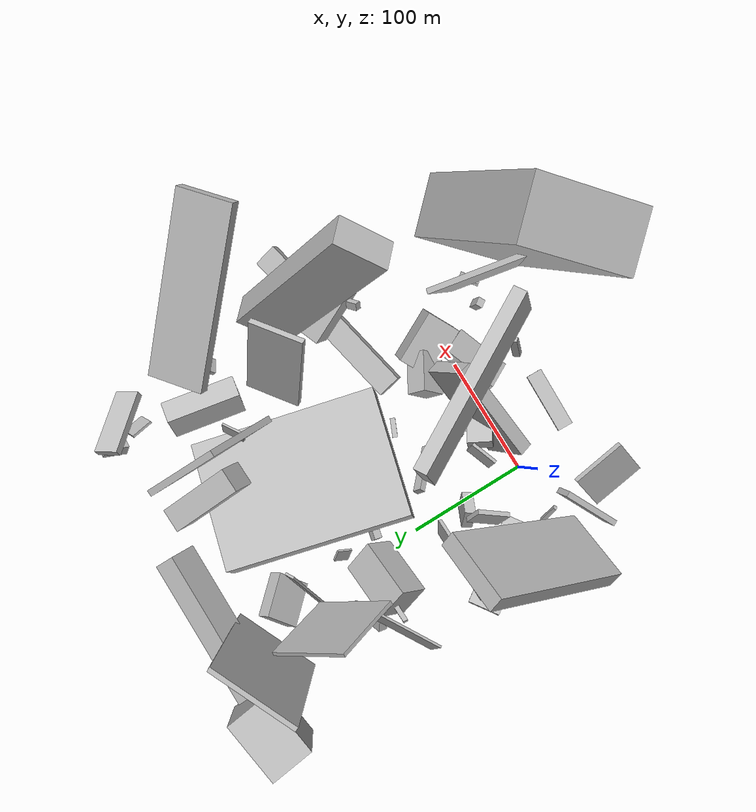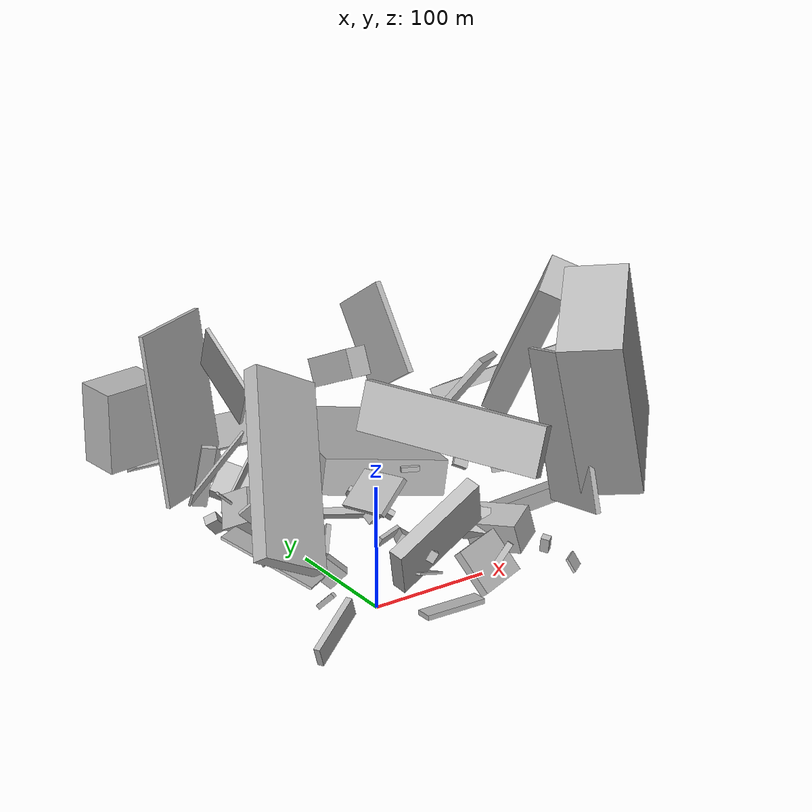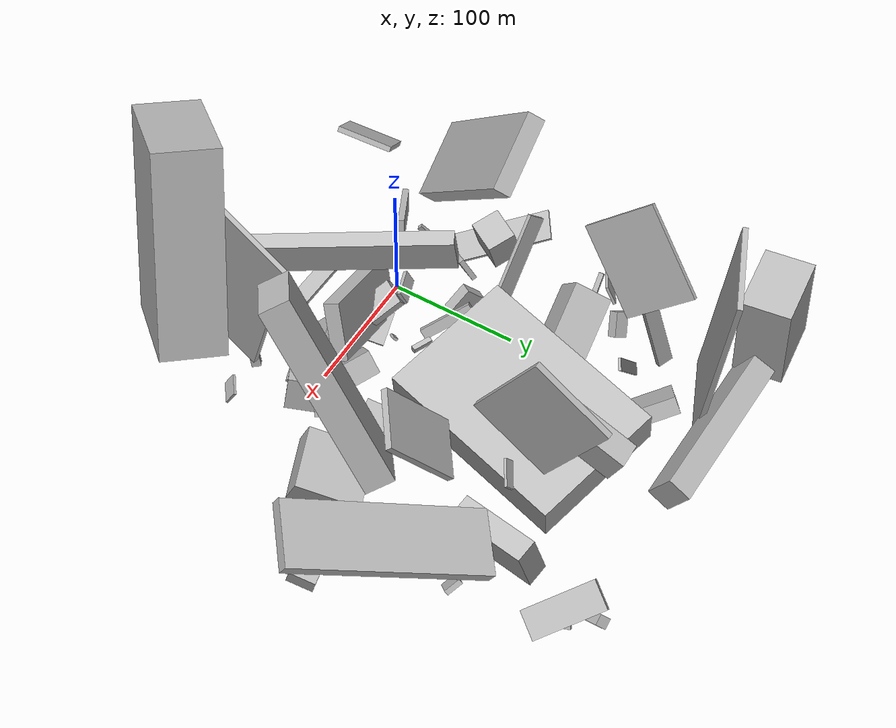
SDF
<sdf version="1.6">
 <world name="default">
  <model name="building_1">
   <static>0</static>
   <pose>181.62778123430638 -56.829961058683004 104.75622870394925 0.41340760193390275 -0.12050947763218492 -0.797535893521868</pose>
   <link name="link">
    <gravity>0</gravity>
    <pose>0 0 75.0 0 0 0</pose>
    <collision name="collision"><geometry><box><size>47 89 150</size></box></geometry></collision>
    <visual name="visual">
     <cast_shadows>0</cast_shadows>
     <geometry><box><size>47 89 150</size></box></geometry>
     <material>
      <script>
       <uri>model://HANNAS_wall/materials/scripts</uri>
       <uri>model://HANNAS_wall/materials/textures</uri>
       <name>vrc/HANNAS_wall</name>
      </script>
     </material>
    </visual>
   </link>
  </model>
  <model name="building_6">
   <static>0</static>
   <pose>100.41339992611925 22.29559992179713 24.353771156262386 0.27460366340959924 0.7814450842973615 1.2354463447300463</pose>
   <link name="link">
    <gravity>0</gravity>
    <pose>0 0 11.0 0 0 0</pose>
    <collision name="collision"><geometry><box><size>18 33 22</size></box></geometry></collision>
    <visual name="visual">
     <cast_shadows>0</cast_shadows>
     <geometry><box><size>18 33 22</size></box></geometry>
     <material>
      <script>
       <uri>model://HANNAS_wall/materials/scripts</uri>
       <uri>model://HANNAS_wall/materials/textures</uri>
       <name>vrc/HANNAS_wall</name>
      </script>
     </material>
    </visual>
   </link>
  </model>
  <model name="building_9">
   <static>0</static>
   <pose>202.92018784832817 114.92015161486549 89.3930528797136 0.41424176409778923 -0.410473397821822 0.6333548334155709</pose>
   <link name="link">
    <gravity>0</gravity>
    <pose>0 0 75.0 0 0 0</pose>
    <collision name="collision"><geometry><box><size>42 22 150</size></box></geometry></collision>
    <visual name="visual">
     <cast_shadows>0</cast_shadows>
     <geometry><box><size>42 22 150</size></box></geometry>
     <material>
      <script>
       <uri>model://HANNAS_wall/materials/scripts</uri>
       <uri>model://HANNAS_wall/materials/textures</uri>
       <name>vrc/HANNAS_wall</name>
      </script>
     </material>
    </visual>
   </link>
  </model>
  <model name="building_11">
   <static>0</static>
   <pose>81.60038833937313 155.5969478903069 38.42744125661743 0.0870294544799585 -0.15905743890190527 2.8782792268598842</pose>
   <link name="link">
    <gravity>0</gravity>
    <pose>0 0 15.0 0 0 0</pose>
    <collision name="collision"><geometry><box><size>104 150 30</size></box></geometry></collision>
    <visual name="visual">
     <cast_shadows>0</cast_shadows>
     <geometry><box><size>104 150 30</size></box></geometry>
     <material>
      <script>
       <uri>model://HANNAS_wall/materials/scripts</uri>
       <uri>model://HANNAS_wall/materials/textures</uri>
       <name>vrc/HANNAS_wall</name>
      </script>
     </material>
    </visual>
   </link>
  </model>
  <model name="building_12">
   <static>0</static>
   <pose>200.65052059249666 68.99652779053706 43.300755149841706 0.3837364830169382 -0.14467282643756932 -2.782687314562869</pose>
   <link name="link">
    <gravity>0</gravity>
    <pose>0 0 11.0 0 0 0</pose>
    <collision name="collision"><geometry><box><size>46 48 22</size></box></geometry></collision>
    <visual name="visual">
     <cast_shadows>0</cast_shadows>
     <geometry><box><size>46 48 22</size></box></geometry>
     <material>
      <script>
       <uri>model://HANNAS_wall/materials/scripts</uri>
       <uri>model://HANNAS_wall/materials/textures</uri>
       <name>vrc/HANNAS_wall</name>
      </script>
     </material>
    </visual>
   </link>
  </model>
  <model name="building_15">
   <static>0</static>
   <pose>150.29541065074352 -5.62952348746983 116.93909951079544 1.3074179471680738 -0.06561653426909896 -0.2005784589073619</pose>
   <link name="link">
    <gravity>0</gravity>
    <pose>0 0 38.5 0 0 0</pose>
    <collision name="collision"><geometry><box><size>4 120 77</size></box></geometry></collision>
    <visual name="visual">
     <cast_shadows>0</cast_shadows>
     <geometry><box><size>4 120 77</size></box></geometry>
     <material>
      <script>
       <uri>model://HANNAS_wall/materials/scripts</uri>
       <uri>model://HANNAS_wall/materials/textures</uri>
       <name>vrc/HANNAS_wall</name>
      </script>
     </material>
    </visual>
   </link>
  </model>
  <model name="building_23">
   <static>0</static>
   <pose>-9.901311223835938 56.50516448297498 44.13695730878735 -2.01343031328651 -0.39806591463981833 2.6599263963321573</pose>
   <link name="link">
    <gravity>0</gravity>
    <pose>0 0 14.5 0 0 0</pose>
    <collision name="collision"><geometry><box><size>4 19 29</size></box></geometry></collision>
    <visual name="visual">
     <cast_shadows>0</cast_shadows>
     <geometry><box><size>4 19 29</size></box></geometry>
     <material>
      <script>
       <uri>model://HANNAS_wall/materials/scripts</uri>
       <uri>model://HANNAS_wall/materials/textures</uri>
       <name>vrc/HANNAS_wall</name>
      </script>
     </material>
    </visual>
   </link>
  </model>
  <model name="building_24">
   <static>0</static>
   <pose>200.56718997824925 198.07591988099784 63.95120900199447 0.5704566773049597 -1.0674264048297555 1.729349936935957</pose>
   <link name="link">
    <gravity>0</gravity>
    <pose>0 0 75.0 0 0 0</pose>
    <collision name="collision"><geometry><box><size>10 47 150</size></box></geometry></collision>
    <visual name="visual">
     <cast_shadows>0</cast_shadows>
     <geometry><box><size>10 47 150</size></box></geometry>
     <material>
      <script>
       <uri>model://HANNAS_wall/materials/scripts</uri>
       <uri>model://HANNAS_wall/materials/textures</uri>
       <name>vrc/HANNAS_wall</name>
      </script>
     </material>
    </visual>
   </link>
  </model>
  <model name="building_26">
   <static>0</static>
   <pose>207.22941711827144 266.40305713704504 29.6174458225779 0.7192496795375679 -0.9073419525765692 0.1526931062896808</pose>
   <link name="link">
    <gravity>0</gravity>
    <pose>0 0 11.0 0 0 0</pose>
    <collision name="collision"><geometry><box><size>6 55 22</size></box></geometry></collision>
    <visual name="visual">
     <cast_shadows>0</cast_shadows>
     <geometry><box><size>6 55 22</size></box></geometry>
     <material>
      <script>
       <uri>model://HANNAS_wall/materials/scripts</uri>
       <uri>model://HANNAS_wall/materials/textures</uri>
       <name>vrc/HANNAS_wall</name>
      </script>
     </material>
    </visual>
   </link>
  </model>
  <model name="building_35">
   <static>0</static>
   <pose>87.37654608307663 275.29059221368243 38.88797717263988 1.5463377264508071 -0.5480142295324905 -1.5693445576273866</pose>
   <link name="link">
    <gravity>0</gravity>
    <pose>0 0 75.0 0 0 0</pose>
    <collision name="collision"><geometry><box><size>19 29 150</size></box></geometry></collision>
    <visual name="visual">
     <cast_shadows>0</cast_shadows>
     <geometry><box><size>19 29 150</size></box></geometry>
     <material>
      <script>
       <uri>model://HANNAS_wall/materials/scripts</uri>
       <uri>model://HANNAS_wall/materials/textures</uri>
       <name>vrc/HANNAS_wall</name>
      </script>
     </material>
    </visual>
   </link>
  </model>
  <model name="building_37">
   <static>0</static>
   <pose>-64.60249120097326 276.45399733383454 38.38960875734548 -0.021199643157860746 0.007752772517476573 -3.014206578636452</pose>
   <link name="link">
    <gravity>0</gravity>
    <pose>0 0 35.0 0 0 0</pose>
    <collision name="collision"><geometry><box><size>54 37 70</size></box></geometry></collision>
    <visual name="visual">
     <cast_shadows>0</cast_shadows>
     <geometry><box><size>54 37 70</size></box></geometry>
     <material>
      <script>
       <uri>model://HANNAS_wall/materials/scripts</uri>
       <uri>model://HANNAS_wall/materials/textures</uri>
       <name>vrc/HANNAS_wall</name>
      </script>
     </material>
    </visual>
   </link>
  </model>
  <model name="building_42">
   <static>0</static>
   <pose>-40.27949720575122 -42.5652916731845 108.23680996056456 -0.8986041245170789 -0.1431406556665133 -1.4053886569828866</pose>
   <link name="link">
    <gravity>0</gravity>
    <pose>0 0 16.0 0 0 0</pose>
    <collision name="collision"><geometry><box><size>41 4 32</size></box></geometry></collision>
    <visual name="visual">
     <cast_shadows>0</cast_shadows>
     <geometry><box><size>41 4 32</size></box></geometry>
     <material>
      <script>
       <uri>model://HANNAS_wall/materials/scripts</uri>
       <uri>model://HANNAS_wall/materials/textures</uri>
       <name>vrc/HANNAS_wall</name>
      </script>
     </material>
    </visual>
   </link>
  </model>
  <model name="building_46">
   <static>0</static>
   <pose>-13.046258868459958 149.61007165047752 39.28430234622244 2.620481557693868 -0.4990777187596904 -1.2202207706091</pose>
   <link name="link">
    <gravity>0</gravity>
    <pose>0 0 14.5 0 0 0</pose>
    <collision name="collision"><geometry><box><size>30 51 29</size></box></geometry></collision>
    <visual name="visual">
     <cast_shadows>0</cast_shadows>
     <geometry><box><size>30 51 29</size></box></geometry>
     <material>
      <script>
       <uri>model://HANNAS_wall/materials/scripts</uri>
       <uri>model://HANNAS_wall/materials/textures</uri>
       <name>vrc/HANNAS_wall</name>
      </script>
     </material>
    </visual>
   </link>
  </model>
  <model name="building_51">
   <static>0</static>
   <pose>-1.845372617270687 51.56690049891347 16.8805968858292 2.9980482731381564 -0.7351074389704401 2.668659597247639</pose>
   <link name="link">
    <gravity>0</gravity>
    <pose>0 0 9.5 0 0 0</pose>
    <collision name="collision"><geometry><box><size>22 9 19</size></box></geometry></collision>
    <visual name="visual">
     <cast_shadows>0</cast_shadows>
     <geometry><box><size>22 9 19</size></box></geometry>
     <material>
      <script>
       <uri>model://HANNAS_wall/materials/scripts</uri>
       <uri>model://HANNAS_wall/materials/textures</uri>
       <name>vrc/HANNAS_wall</name>
      </script>
     </material>
    </visual>
   </link>
  </model>
  <model name="building_52">
   <static>0</static>
   <pose>72.72170848542366 146.3348516806358 14.270329781232471 0.5732673839932478 0.10949052292096213 1.16327463975699</pose>
   <link name="link">
    <gravity>0</gravity>
    <pose>0 0 5.0 0 0 0</pose>
    <collision name="collision"><geometry><box><size>18 4 10</size></box></geometry></collision>
    <visual name="visual">
     <cast_shadows>0</cast_shadows>
     <geometry><box><size>18 4 10</size></box></geometry>
     <material>
      <script>
       <uri>model://HANNAS_wall/materials/scripts</uri>
       <uri>model://HANNAS_wall/materials/textures</uri>
       <name>vrc/HANNAS_wall</name>
      </script>
     </material>
    </visual>
   </link>
  </model>
  <model name="building_59">
   <static>0</static>
   <pose>40.714835492960276 76.67821106510885 130.3056034253699 1.8114556491140192 -1.2653848471286786 0.2793223356467712</pose>
   <link name="link">
    <gravity>0</gravity>
    <pose>0 0 75.0 0 0 0</pose>
    <collision name="collision"><geometry><box><size>40 11 150</size></box></geometry></collision>
    <visual name="visual">
     <cast_shadows>0</cast_shadows>
     <geometry><box><size>40 11 150</size></box></geometry>
     <material>
      <script>
       <uri>model://HANNAS_wall/materials/scripts</uri>
       <uri>model://HANNAS_wall/materials/textures</uri>
       <name>vrc/HANNAS_wall</name>
      </script>
     </material>
    </visual>
   </link>
  </model>
  <model name="building_63">
   <static>0</static>
   <pose>-28.36905792686105 40.28920853388714 99.51098293776178 -0.843500481326227 -0.7870815757379189 1.0708749419646897</pose>
   <link name="link">
    <gravity>0</gravity>
    <pose>0 0 30.0 0 0 0</pose>
    <collision name="collision"><geometry><box><size>150 14 60</size></box></geometry></collision>
    <visual name="visual">
     <cast_shadows>0</cast_shadows>
     <geometry><box><size>150 14 60</size></box></geometry>
     <material>
      <script>
       <uri>model://HANNAS_wall/materials/scripts</uri>
       <uri>model://HANNAS_wall/materials/textures</uri>
       <name>vrc/HANNAS_wall</name>
      </script>
     </material>
    </visual>
   </link>
  </model>
  <model name="building_71">
   <static>0</static>
   <pose>136.23393932842447 -6.100039547946127 30.740308162819783 1.7272271288454808 0.2373637807756656 -2.636521485175267</pose>
   <link name="link">
    <gravity>0</gravity>
    <pose>0 0 22.0 0 0 0</pose>
    <collision name="collision"><geometry><box><size>29 26 44</size></box></geometry></collision>
    <visual name="visual">
     <cast_shadows>0</cast_shadows>
     <geometry><box><size>29 26 44</size></box></geometry>
     <material>
      <script>
       <uri>model://HANNAS_wall/materials/scripts</uri>
       <uri>model://HANNAS_wall/materials/textures</uri>
       <name>vrc/HANNAS_wall</name>
      </script>
     </material>
    </visual>
   </link>
  </model>
  <model name="building_78">
   <static>0</static>
   <pose>52.37371781116812 -1.559048353949576 61.327626814690674 -2.8312840821012646 -0.40839156910692165 0.14622311151052275</pose>
   <link name="link">
    <gravity>0</gravity>
    <pose>0 0 22.5 0 0 0</pose>
    <collision name="collision"><geometry><box><size>89 12 45</size></box></geometry></collision>
    <visual name="visual">
     <cast_shadows>0</cast_shadows>
     <geometry><box><size>89 12 45</size></box></geometry>
     <material>
      <script>
       <uri>model://HANNAS_wall/materials/scripts</uri>
       <uri>model://HANNAS_wall/materials/textures</uri>
       <name>vrc/HANNAS_wall</name>
      </script>
     </material>
    </visual>
   </link>
  </model>
  <model name="building_82">
   <static>0</static>
   <pose>75.59878970740311 76.70627773173001 66.80120995198565 -1.7402709115801334 1.5081172482902263 -2.153987632187833</pose>
   <link name="link">
    <gravity>0</gravity>
    <pose>0 0 7.5 0 0 0</pose>
    <collision name="collision"><geometry><box><size>4 4 15</size></box></geometry></collision>
    <visual name="visual">
     <cast_shadows>0</cast_shadows>
     <geometry><box><size>4 4 15</size></box></geometry>
     <material>
      <script>
       <uri>model://HANNAS_wall/materials/scripts</uri>
       <uri>model://HANNAS_wall/materials/textures</uri>
       <name>vrc/HANNAS_wall</name>
      </script>
     </material>
    </visual>
   </link>
  </model>
  <model name="building_85">
   <static>0</static>
   <pose>-55.92582098649513 238.67161895250086 80.52137397152059 1.3858675659967519 -1.450409358124962 2.1672276498566947</pose>
   <link name="link">
    <gravity>0</gravity>
    <pose>0 0 37.5 0 0 0</pose>
    <collision name="collision"><geometry><box><size>150 4 75</size></box></geometry></collision>
    <visual name="visual">
     <cast_shadows>0</cast_shadows>
     <geometry><box><size>150 4 75</size></box></geometry>
     <material>
      <script>
       <uri>model://HANNAS_wall/materials/scripts</uri>
       <uri>model://HANNAS_wall/materials/textures</uri>
       <name>vrc/HANNAS_wall</name>
      </script>
     </material>
    </visual>
   </link>
  </model>
  <model name="building_89">
   <static>0</static>
   <pose>135.90404245159735 227.28688714616533 109.80178479512635 1.0026175078680883 -0.05068455164406205 0.004264734557976212</pose>
   <link name="link">
    <gravity>0</gravity>
    <pose>0 0 33.5 0 0 0</pose>
    <collision name="collision"><geometry><box><size>5 80 67</size></box></geometry></collision>
    <visual name="visual">
     <cast_shadows>0</cast_shadows>
     <geometry><box><size>5 80 67</size></box></geometry>
     <material>
      <script>
       <uri>model://HANNAS_wall/materials/scripts</uri>
       <uri>model://HANNAS_wall/materials/textures</uri>
       <name>vrc/HANNAS_wall</name>
      </script>
     </material>
    </visual>
   </link>
  </model>
  <model name="building_92">
   <static>0</static>
   <pose>112.5710357386839 55.758135452781744 14.255174739459477 1.8611199968456449 -1.3130657030495982 1.485759776038663</pose>
   <link name="link">
    <gravity>0</gravity>
    <pose>0 0 75.0 0 0 0</pose>
    <collision name="collision"><geometry><box><size>13 20 150</size></box></geometry></collision>
    <visual name="visual">
     <cast_shadows>0</cast_shadows>
     <geometry><box><size>13 20 150</size></box></geometry>
     <material>
      <script>
       <uri>model://HANNAS_wall/materials/scripts</uri>
       <uri>model://HANNAS_wall/materials/textures</uri>
       <name>vrc/HANNAS_wall</name>
      </script>
     </material>
    </visual>
   </link>
  </model>
  <model name="building_98">
   <static>0</static>
   <pose>-37.57686721818529 204.43302651256184 42.43466435363905 -2.1135586403790163 -1.2856147213868434 -1.4679819840013402</pose>
   <link name="link">
    <gravity>0</gravity>
    <pose>0 0 6.0 0 0 0</pose>
    <collision name="collision"><geometry><box><size>60 4 12</size></box></geometry></collision>
    <visual name="visual">
     <cast_shadows>0</cast_shadows>
     <geometry><box><size>60 4 12</size></box></geometry>
     <material>
      <script>
       <uri>model://HANNAS_wall/materials/scripts</uri>
       <uri>model://HANNAS_wall/materials/textures</uri>
       <name>vrc/HANNAS_wall</name>
      </script>
     </material>
    </visual>
   </link>
  </model>
  <model name="building_105">
   <static>0</static>
   <pose>15.982424311009183 21.060640345294594 41.60085104947538 -1.4712701940319064 -1.0513601888950412 -1.3097557607107828</pose>
   <link name="link">
    <gravity>0</gravity>
    <pose>0 0 11.5 0 0 0</pose>
    <collision name="collision"><geometry><box><size>11 3 23</size></box></geometry></collision>
    <visual name="visual">
     <cast_shadows>0</cast_shadows>
     <geometry><box><size>11 3 23</size></box></geometry>
     <material>
      <script>
       <uri>model://HANNAS_wall/materials/scripts</uri>
       <uri>model://HANNAS_wall/materials/textures</uri>
       <name>vrc/HANNAS_wall</name>
      </script>
     </material>
    </visual>
   </link>
  </model>
  <model name="building_108">
   <static>0</static>
   <pose>47.47417538694035 26.06140771744102 8.728096872078487 0.9678030043159811 0.7392099297299527 2.0565920511882254</pose>
   <link name="link">
    <gravity>0</gravity>
    <pose>0 0 3.5 0 0 0</pose>
    <collision name="collision"><geometry><box><size>4 2 7</size></box></geometry></collision>
    <visual name="visual">
     <cast_shadows>0</cast_shadows>
     <geometry><box><size>4 2 7</size></box></geometry>
     <material>
      <script>
       <uri>model://HANNAS_wall/materials/scripts</uri>
       <uri>model://HANNAS_wall/materials/textures</uri>
       <name>vrc/HANNAS_wall</name>
      </script>
     </material>
    </visual>
   </link>
  </model>
  <model name="building_110">
   <static>0</static>
   <pose>211.75049346520186 178.4994321890495 9.926370817540333 -2.3202995601290035 -0.4161271401981952 2.6694737404842948</pose>
   <link name="link">
    <gravity>0</gravity>
    <pose>0 0 7.0 0 0 0</pose>
    <collision name="collision"><geometry><box><size>13 4 14</size></box></geometry></collision>
    <visual name="visual">
     <cast_shadows>0</cast_shadows>
     <geometry><box><size>13 4 14</size></box></geometry>
     <material>
      <script>
       <uri>model://HANNAS_wall/materials/scripts</uri>
       <uri>model://HANNAS_wall/materials/textures</uri>
       <name>vrc/HANNAS_wall</name>
      </script>
     </material>
    </visual>
   </link>
  </model>
  <model name="building_111">
   <static>0</static>
   <pose>-48.11472651658999 154.403132432673 71.1492226265132 2.004962949723729 -0.3063419339788193 0.4883669064171369</pose>
   <link name="link">
    <gravity>0</gravity>
    <pose>0 0 1.0 0 0 0</pose>
    <collision name="collision"><geometry><box><size>80 15 2</size></box></geometry></collision>
    <visual name="visual">
     <cast_shadows>0</cast_shadows>
     <geometry><box><size>80 15 2</size></box></geometry>
     <material>
      <script>
       <uri>model://HANNAS_wall/materials/scripts</uri>
       <uri>model://HANNAS_wall/materials/textures</uri>
       <name>vrc/HANNAS_wall</name>
      </script>
     </material>
    </visual>
   </link>
  </model>
  <model name="building_112">
   <static>0</static>
   <pose>65.89132228425086 96.08580218502838 18.60997359964622 -0.43131163794364025 -0.9704461626695985 -0.9297833368898228</pose>
   <link name="link">
    <gravity>0</gravity>
    <pose>0 0 4.5 0 0 0</pose>
    <collision name="collision"><geometry><box><size>13 9 9</size></box></geometry></collision>
    <visual name="visual">
     <cast_shadows>0</cast_shadows>
     <geometry><box><size>13 9 9</size></box></geometry>
     <material>
      <script>
       <uri>model://HANNAS_wall/materials/scripts</uri>
       <uri>model://HANNAS_wall/materials/textures</uri>
       <name>vrc/HANNAS_wall</name>
      </script>
     </material>
    </visual>
   </link>
  </model>
  <model name="building_117">
   <static>0</static>
   <pose>42.77336594848944 73.02586590716075 45.96040718857346 0.5848412262950244 -0.5195255550606447 0.46405666102779786</pose>
   <link name="link">
    <gravity>0</gravity>
    <pose>0 0 4.0 0 0 0</pose>
    <collision name="collision"><geometry><box><size>5 41 8</size></box></geometry></collision>
    <visual name="visual">
     <cast_shadows>0</cast_shadows>
     <geometry><box><size>5 41 8</size></box></geometry>
     <material>
      <script>
       <uri>model://HANNAS_wall/materials/scripts</uri>
       <uri>model://HANNAS_wall/materials/textures</uri>
       <name>vrc/HANNAS_wall</name>
      </script>
     </material>
    </visual>
   </link>
  </model>
  <model name="building_119">
   <static>0</static>
   <pose>17.196103619603864 161.47629370277403 23.4474165488849 0.7476044615396632 0.5459620209591571 -2.067287129939316</pose>
   <link name="link">
    <gravity>0</gravity>
    <pose>0 0 1.0 0 0 0</pose>
    <collision name="collision"><geometry><box><size>13 11 2</size></box></geometry></collision>
    <visual name="visual">
     <cast_shadows>0</cast_shadows>
     <geometry><box><size>13 11 2</size></box></geometry>
     <material>
      <script>
       <uri>model://HANNAS_wall/materials/scripts</uri>
       <uri>model://HANNAS_wall/materials/textures</uri>
       <name>vrc/HANNAS_wall</name>
      </script>
     </material>
    </visual>
   </link>
  </model>
  <model name="building_125">
   <static>0</static>
   <pose>50.47052618404605 22.024565316085393 32.01127639229281 -1.3271383645181858 -0.5535306684311386 2.5186760264304797</pose>
   <link name="link">
    <gravity>0</gravity>
    <pose>0 0 10.0 0 0 0</pose>
    <collision name="collision"><geometry><box><size>33 9 20</size></box></geometry></collision>
    <visual name="visual">
     <cast_shadows>0</cast_shadows>
     <geometry><box><size>33 9 20</size></box></geometry>
     <material>
      <script>
       <uri>model://HANNAS_wall/materials/scripts</uri>
       <uri>model://HANNAS_wall/materials/textures</uri>
       <name>vrc/HANNAS_wall</name>
      </script>
     </material>
    </visual>
   </link>
  </model>
  <model name="building_129">
   <static>0</static>
   <pose>-6.301375458967206 214.53956450267177 104.27902761244792 -0.4271900110614023 -0.7213195105973353 1.7627813633881615</pose>
   <link name="link">
    <gravity>0</gravity>
    <pose>0 0 36.0 0 0 0</pose>
    <collision name="collision"><geometry><box><size>61 3 72</size></box></geometry></collision>
    <visual name="visual">
     <cast_shadows>0</cast_shadows>
     <geometry><box><size>61 3 72</size></box></geometry>
     <material>
      <script>
       <uri>model://HANNAS_wall/materials/scripts</uri>
       <uri>model://HANNAS_wall/materials/textures</uri>
       <name>vrc/HANNAS_wall</name>
      </script>
     </material>
    </visual>
   </link>
  </model>
  <model name="building_130">
   <static>0</static>
   <pose>7.116447421826978 200.23962325772212 36.26089582103963 0.9513167678790124 0.20239179469844332 -1.121690824860809</pose>
   <link name="link">
    <gravity>0</gravity>
    <pose>0 0 4.5 0 0 0</pose>
    <collision name="collision"><geometry><box><size>2 80 9</size></box></geometry></collision>
    <visual name="visual">
     <cast_shadows>0</cast_shadows>
     <geometry><box><size>2 80 9</size></box></geometry>
     <material>
      <script>
       <uri>model://HANNAS_wall/materials/scripts</uri>
       <uri>model://HANNAS_wall/materials/textures</uri>
       <name>vrc/HANNAS_wall</name>
      </script>
     </material>
    </visual>
   </link>
  </model>
  <model name="building_132">
   <static>0</static>
   <pose>-46.59716785782501 7.98382059740924 11.360221986351402 -0.130374393033362 -0.7719161592191146 2.1182075277952532</pose>
   <link name="link">
    <gravity>0</gravity>
    <pose>0 0 10.0 0 0 0</pose>
    <collision name="collision"><geometry><box><size>4 3 20</size></box></geometry></collision>
    <visual name="visual">
     <cast_shadows>0</cast_shadows>
     <geometry><box><size>4 3 20</size></box></geometry>
     <material>
      <script>
       <uri>model://HANNAS_wall/materials/scripts</uri>
       <uri>model://HANNAS_wall/materials/textures</uri>
       <name>vrc/HANNAS_wall</name>
      </script>
     </material>
    </visual>
   </link>
  </model>
  <model name="building_136">
   <static>0</static>
   <pose>-67.08748197107722 48.830563799541956 36.401678493198084 1.6885651033996387 -0.3549768493785897 2.1334642459161586</pose>
   <link name="link">
    <gravity>0</gravity>
    <pose>0 0 13.0 0 0 0</pose>
    <collision name="collision"><geometry><box><size>80 2 26</size></box></geometry></collision>
    <visual name="visual">
     <cast_shadows>0</cast_shadows>
     <geometry><box><size>80 2 26</size></box></geometry>
     <material>
      <script>
       <uri>model://HANNAS_wall/materials/scripts</uri>
       <uri>model://HANNAS_wall/materials/textures</uri>
       <name>vrc/HANNAS_wall</name>
      </script>
     </material>
    </visual>
   </link>
  </model>
  <model name="building_137">
   <static>0</static>
   <pose>111.70130071072373 215.14480948997294 88.30932060328993 0.029215515289813292 0.441260251304977 1.6058487837766764</pose>
   <link name="link">
    <gravity>0</gravity>
    <pose>0 0 12.5 0 0 0</pose>
    <collision name="collision"><geometry><box><size>62 19 25</size></box></geometry></collision>
    <visual name="visual">
     <cast_shadows>0</cast_shadows>
     <geometry><box><size>62 19 25</size></box></geometry>
     <material>
      <script>
       <uri>model://HANNAS_wall/materials/scripts</uri>
       <uri>model://HANNAS_wall/materials/textures</uri>
       <name>vrc/HANNAS_wall</name>
      </script>
     </material>
    </visual>
   </link>
  </model>
  <model name="building_140">
   <static>0</static>
   <pose>34.308866415720935 -49.26044204551677 14.197983891613143 3.07857810766967 0.008445816054776414 -0.02548943348668709</pose>
   <link name="link">
    <gravity>0</gravity>
    <pose>0 0 2.0 0 0 0</pose>
    <collision name="collision"><geometry><box><size>51 13 4</size></box></geometry></collision>
    <visual name="visual">
     <cast_shadows>0</cast_shadows>
     <geometry><box><size>51 13 4</size></box></geometry>
     <material>
      <script>
       <uri>model://HANNAS_wall/materials/scripts</uri>
       <uri>model://HANNAS_wall/materials/textures</uri>
       <name>vrc/HANNAS_wall</name>
      </script>
     </material>
    </visual>
   </link>
  </model>
  <model name="building_141">
   <static>0</static>
   <pose>-40.97348307365469 59.244406001404904 60.49780746036166 3.1071154224357924 0.2668530204408715 -0.5524251738946915</pose>
   <link name="link">
    <gravity>0</gravity>
    <pose>0 0 12.5 0 0 0</pose>
    <collision name="collision"><geometry><box><size>22 27 25</size></box></geometry></collision>
    <visual name="visual">
     <cast_shadows>0</cast_shadows>
     <geometry><box><size>22 27 25</size></box></geometry>
     <material>
      <script>
       <uri>model://HANNAS_wall/materials/scripts</uri>
       <uri>model://HANNAS_wall/materials/textures</uri>
       <name>vrc/HANNAS_wall</name>
      </script>
     </material>
    </visual>
   </link>
  </model>
  <model name="building_150">
   <static>0</static>
   <pose>-85.23671914501068 26.082510977374817 53.50511641320847 0.6032106482671459 0.1646897352252423 0.08938800952800835</pose>
   <link name="link">
    <gravity>0</gravity>
    <pose>0 0 9.0 0 0 0</pose>
    <collision name="collision"><geometry><box><size>2 12 18</size></box></geometry></collision>
    <visual name="visual">
     <cast_shadows>0</cast_shadows>
     <geometry><box><size>2 12 18</size></box></geometry>
     <material>
      <script>
       <uri>model://HANNAS_wall/materials/scripts</uri>
       <uri>model://HANNAS_wall/materials/textures</uri>
       <name>vrc/HANNAS_wall</name>
      </script>
     </material>
    </visual>
   </link>
  </model>
  <model name="building_159">
   <static>0</static>
   <pose>-59.32683558532631 -31.091913510404595 18.628581613748068 -3.131409225421885 -0.3697797563625521 0.48839570467449595</pose>
   <link name="link">
    <gravity>0</gravity>
    <pose>0 0 8.5 0 0 0</pose>
    <collision name="collision"><geometry><box><size>53 5 17</size></box></geometry></collision>
    <visual name="visual">
     <cast_shadows>0</cast_shadows>
     <geometry><box><size>53 5 17</size></box></geometry>
     <material>
      <script>
       <uri>model://HANNAS_wall/materials/scripts</uri>
       <uri>model://HANNAS_wall/materials/textures</uri>
       <name>vrc/HANNAS_wall</name>
      </script>
     </material>
    </visual>
   </link>
  </model>
  <model name="building_160">
   <static>0</static>
   <pose>87.30633214896162 -45.87356696621181 38.48034700479938 -0.6816436448865976 -0.9011867858697681 -0.1278165468701404</pose>
   <link name="link">
    <gravity>0</gravity>
    <pose>0 0 2.5 0 0 0</pose>
    <collision name="collision"><geometry><box><size>19 6 5</size></box></geometry></collision>
    <visual name="visual">
     <cast_shadows>0</cast_shadows>
     <geometry><box><size>19 6 5</size></box></geometry>
     <material>
      <script>
       <uri>model://HANNAS_wall/materials/scripts</uri>
       <uri>model://HANNAS_wall/materials/textures</uri>
       <name>vrc/HANNAS_wall</name>
      </script>
     </material>
    </visual>
   </link>
  </model>
  <model name="building_161">
   <static>0</static>
   <pose>178.26435172771977 49.53306853830944 83.2324383584132 -0.7840932180323685 -0.5976369564606832 -0.4004022140623997</pose>
   <link name="link">
    <gravity>0</gravity>
    <pose>0 0 2.5 0 0 0</pose>
    <collision name="collision"><geometry><box><size>6 10 5</size></box></geometry></collision>
    <visual name="visual">
     <cast_shadows>0</cast_shadows>
     <geometry><box><size>6 10 5</size></box></geometry>
     <material>
      <script>
       <uri>model://HANNAS_wall/materials/scripts</uri>
       <uri>model://HANNAS_wall/materials/textures</uri>
       <name>vrc/HANNAS_wall</name>
      </script>
     </material>
    </visual>
   </link>
  </model>
  <model name="building_166">
   <static>0</static>
   <pose>133.76662112563952 -40.37660983640664 31.997492024881673 1.4289598359491988 0.24443307555602256 -2.563117500802859</pose>
   <link name="link">
    <gravity>0</gravity>
    <pose>0 0 3.5 0 0 0</pose>
    <collision name="collision"><geometry><box><size>6 13 7</size></box></geometry></collision>
    <visual name="visual">
     <cast_shadows>0</cast_shadows>
     <geometry><box><size>6 13 7</size></box></geometry>
     <material>
      <script>
       <uri>model://HANNAS_wall/materials/scripts</uri>
       <uri>model://HANNAS_wall/materials/textures</uri>
       <name>vrc/HANNAS_wall</name>
      </script>
     </material>
    </visual>
   </link>
  </model>
  <model name="building_169">
   <static>0</static>
   <pose>95.30393702530012 -16.146181708911254 19.142751326147987 2.281415754885245 0.04108233562479704 -2.789476230722829</pose>
   <link name="link">
    <gravity>0</gravity>
    <pose>0 0 3.5 0 0 0</pose>
    <collision name="collision"><geometry><box><size>47 38 7</size></box></geometry></collision>
    <visual name="visual">
     <cast_shadows>0</cast_shadows>
     <geometry><box><size>47 38 7</size></box></geometry>
     <material>
      <script>
       <uri>model://HANNAS_wall/materials/scripts</uri>
       <uri>model://HANNAS_wall/materials/textures</uri>
       <name>vrc/HANNAS_wall</name>
      </script>
     </material>
    </visual>
   </link>
  </model>
  <model name="building_173">
   <static>0</static>
   <pose>169.16945425182087 126.82230456532812 100.35191534726287 2.823768035294132 -0.9076225159454501 -0.6869298890216461</pose>
   <link name="link">
    <gravity>0</gravity>
    <pose>0 0 2.5 0 0 0</pose>
    <collision name="collision"><geometry><box><size>70 44 5</size></box></geometry></collision>
    <visual name="visual">
     <cast_shadows>0</cast_shadows>
     <geometry><box><size>70 44 5</size></box></geometry>
     <material>
      <script>
       <uri>model://HANNAS_wall/materials/scripts</uri>
       <uri>model://HANNAS_wall/materials/textures</uri>
       <name>vrc/HANNAS_wall</name>
      </script>
     </material>
    </visual>
   </link>
  </model>
  <model name="building_178">
   <static>0</static>
   <pose>171.2821358475713 163.5549372427282 31.914585821985014 1.5027453832015099 -0.25710944231540533 2.974420492376817</pose>
   <link name="link">
    <gravity>0</gravity>
    <pose>0 0 30.0 0 0 0</pose>
    <collision name="collision"><geometry><box><size>17 41 60</size></box></geometry></collision>
    <visual name="visual">
     <cast_shadows>0</cast_shadows>
     <geometry><box><size>17 41 60</size></box></geometry>
     <material>
      <script>
       <uri>model://HANNAS_wall/materials/scripts</uri>
       <uri>model://HANNAS_wall/materials/textures</uri>
       <name>vrc/HANNAS_wall</name>
      </script>
     </material>
    </visual>
   </link>
  </model>
  <model name="building_188">
   <static>0</static>
   <pose>8.166294899728312 218.93721468065655 19.129979665902724 2.4782856665397124 -0.28381807289083677 2.3247060906946064</pose>
   <link name="link">
    <gravity>0</gravity>
    <pose>0 0 6.5 0 0 0</pose>
    <collision name="collision"><geometry><box><size>37 30 13</size></box></geometry></collision>
    <visual name="visual">
     <cast_shadows>0</cast_shadows>
     <geometry><box><size>37 30 13</size></box></geometry>
     <material>
      <script>
       <uri>model://HANNAS_wall/materials/scripts</uri>
       <uri>model://HANNAS_wall/materials/textures</uri>
       <name>vrc/HANNAS_wall</name>
      </script>
     </material>
    </visual>
   </link>
  </model>
  <model name="building_197">
   <static>0</static>
   <pose>194.82155962215694 249.93029063602177 11.249413317290173 2.657118340557903 -0.8997148966372792 -2.5694583532255955</pose>
   <link name="link">
    <gravity>0</gravity>
    <pose>0 0 1.0 0 0 0</pose>
    <collision name="collision"><geometry><box><size>18 19 2</size></box></geometry></collision>
    <visual name="visual">
     <cast_shadows>0</cast_shadows>
     <geometry><box><size>18 19 2</size></box></geometry>
     <material>
      <script>
       <uri>model://HANNAS_wall/materials/scripts</uri>
       <uri>model://HANNAS_wall/materials/textures</uri>
       <name>vrc/HANNAS_wall</name>
      </script>
     </material>
    </visual>
   </link>
  </model>
  <model name="building_198">
   <static>0</static>
   <pose>186.27642445315786 277.1139043139238 15.895812190167945 0.6153779006471909 -0.6054422858875057 1.1990181056986942</pose>
   <link name="link">
    <gravity>0</gravity>
    <pose>0 0 4.5 0 0 0</pose>
    <collision name="collision"><geometry><box><size>21 8 9</size></box></geometry></collision>
    <visual name="visual">
     <cast_shadows>0</cast_shadows>
     <geometry><box><size>21 8 9</size></box></geometry>
     <material>
      <script>
       <uri>model://HANNAS_wall/materials/scripts</uri>
       <uri>model://HANNAS_wall/materials/textures</uri>
       <name>vrc/HANNAS_wall</name>
      </script>
     </material>
    </visual>
   </link>
  </model>
  <model name="building_203">
   <static>0</static>
   <pose>47.95213886329674 10.579093161986881 12.72353284584241 -2.898034977258685 -0.32218859954648243 -2.9200998515445504</pose>
   <link name="link">
    <gravity>0</gravity>
    <pose>0 0 1.0 0 0 0</pose>
    <collision name="collision"><geometry><box><size>27 23 2</size></box></geometry></collision>
    <visual name="visual">
     <cast_shadows>0</cast_shadows>
     <geometry><box><size>27 23 2</size></box></geometry>
     <material>
      <script>
       <uri>model://HANNAS_wall/materials/scripts</uri>
       <uri>model://HANNAS_wall/materials/textures</uri>
       <name>vrc/HANNAS_wall</name>
      </script>
     </material>
    </visual>
   </link>
  </model>
  <model name="building_206">
   <static>0</static>
   <pose>179.12823995650936 207.82342373835843 18.208033753295663 0.2935347296054812 -0.2737298502189153 2.659104920304176</pose>
   <link name="link">
    <gravity>0</gravity>
    <pose>0 0 12.5 0 0 0</pose>
    <collision name="collision"><geometry><box><size>2 3 25</size></box></geometry></collision>
    <visual name="visual">
     <cast_shadows>0</cast_shadows>
     <geometry><box><size>2 3 25</size></box></geometry>
     <material>
      <script>
       <uri>model://HANNAS_wall/materials/scripts</uri>
       <uri>model://HANNAS_wall/materials/textures</uri>
       <name>vrc/HANNAS_wall</name>
      </script>
     </material>
    </visual>
   </link>
  </model>
  <model name="building_208">
   <static>0</static>
   <pose>-52.04474547249349 145.30277074553896 52.96583292441475 2.340361728001444 -0.09032867914601113 1.538971987119894</pose>
   <link name="link">
    <gravity>0</gravity>
    <pose>0 0 10.0 0 0 0</pose>
    <collision name="collision"><geometry><box><size>4 2 20</size></box></geometry></collision>
    <visual name="visual">
     <cast_shadows>0</cast_shadows>
     <geometry><box><size>4 2 20</size></box></geometry>
     <material>
      <script>
       <uri>model://HANNAS_wall/materials/scripts</uri>
       <uri>model://HANNAS_wall/materials/textures</uri>
       <name>vrc/HANNAS_wall</name>
      </script>
     </material>
    </visual>
   </link>
  </model>
  <model name="building_210">
   <static>0</static>
   <pose>112.8377361210909 179.86948456968415 7.306889922057751 -2.845078949156312 1.2691694257294124 0.5869866061220643</pose>
   <link name="link">
    <gravity>0</gravity>
    <pose>0 0 2.0 0 0 0</pose>
    <collision name="collision"><geometry><box><size>2 50 4</size></box></geometry></collision>
    <visual name="visual">
     <cast_shadows>0</cast_shadows>
     <geometry><box><size>2 50 4</size></box></geometry>
     <material>
      <script>
       <uri>model://HANNAS_wall/materials/scripts</uri>
       <uri>model://HANNAS_wall/materials/textures</uri>
       <name>vrc/HANNAS_wall</name>
      </script>
     </material>
    </visual>
   </link>
  </model>
  <model name="building_211">
   <static>0</static>
   <pose>152.99828374296186 -44.95081541072764 13.04278291465644 0.10194858803113804 -0.9935534135230677 2.126661226746099</pose>
   <link name="link">
    <gravity>0</gravity>
    <pose>0 0 1.0 0 0 0</pose>
    <collision name="collision"><geometry><box><size>12 17 2</size></box></geometry></collision>
    <visual name="visual">
     <cast_shadows>0</cast_shadows>
     <geometry><box><size>12 17 2</size></box></geometry>
     <material>
      <script>
       <uri>model://HANNAS_wall/materials/scripts</uri>
       <uri>model://HANNAS_wall/materials/textures</uri>
       <name>vrc/HANNAS_wall</name>
      </script>
     </material>
    </visual>
   </link>
  </model>
  <model name="building_212">
   <static>0</static>
   <pose>147.3928839326917 180.08313129625878 68.48058890934493 2.590416618628569 -0.36528074254940274 -2.5772723886214557</pose>
   <link name="link">
    <gravity>0</gravity>
    <pose>0 0 4.5 0 0 0</pose>
    <collision name="collision"><geometry><box><size>20 2 9</size></box></geometry></collision>
    <visual name="visual">
     <cast_shadows>0</cast_shadows>
     <geometry><box><size>20 2 9</size></box></geometry>
     <material>
      <script>
       <uri>model://HANNAS_wall/materials/scripts</uri>
       <uri>model://HANNAS_wall/materials/textures</uri>
       <name>vrc/HANNAS_wall</name>
      </script>
     </material>
    </visual>
   </link>
  </model>
  <model name="building_216">
   <static>0</static>
   <pose>-44.080346816493375 162.86225174250347 14.435159952692537 0.7213891853506096 -0.7983896111755616 -2.7091397609432435</pose>
   <link name="link">
    <gravity>0</gravity>
    <pose>0 0 4.0 0 0 0</pose>
    <collision name="collision"><geometry><box><size>19 11 8</size></box></geometry></collision>
    <visual name="visual">
     <cast_shadows>0</cast_shadows>
     <geometry><box><size>19 11 8</size></box></geometry>
     <material>
      <script>
       <uri>model://HANNAS_wall/materials/scripts</uri>
       <uri>model://HANNAS_wall/materials/textures</uri>
       <name>vrc/HANNAS_wall</name>
      </script>
     </material>
    </visual>
   </link>
  </model>
  <model name="building_220">
   <static>0</static>
   <pose>-39.747254077953144 85.21409678681889 34.86692654656901 -0.37392070782308123 -0.7867993659236163 3.126837878850842</pose>
   <link name="link">
    <gravity>0</gravity>
    <pose>0 0 7.5 0 0 0</pose>
    <collision name="collision"><geometry><box><size>80 3 15</size></box></geometry></collision>
    <visual name="visual">
     <cast_shadows>0</cast_shadows>
     <geometry><box><size>80 3 15</size></box></geometry>
     <material>
      <script>
       <uri>model://HANNAS_wall/materials/scripts</uri>
       <uri>model://HANNAS_wall/materials/textures</uri>
       <name>vrc/HANNAS_wall</name>
      </script>
     </material>
    </visual>
   </link>
  </model>
  <model name="building_221">
   <static>0</static>
   <pose>47.32615772809596 120.27562001105963 16.09641201187588 1.0454969358572215 -0.15739269414923304 2.9226661694947937</pose>
   <link name="link">
    <gravity>0</gravity>
    <pose>0 0 3.5 0 0 0</pose>
    <collision name="collision"><geometry><box><size>74 6 7</size></box></geometry></collision>
    <visual name="visual">
     <cast_shadows>0</cast_shadows>
     <geometry><box><size>74 6 7</size></box></geometry>
     <material>
      <script>
       <uri>model://HANNAS_wall/materials/scripts</uri>
       <uri>model://HANNAS_wall/materials/textures</uri>
       <name>vrc/HANNAS_wall</name>
      </script>
     </material>
    </visual>
   </link>
  </model>
 </world>
</sdf>
